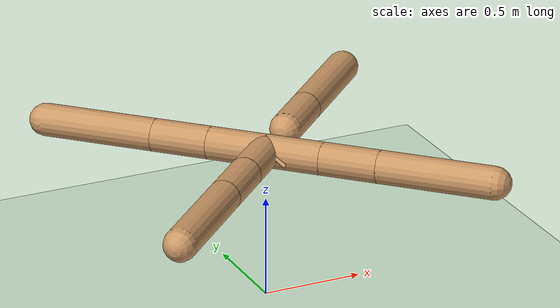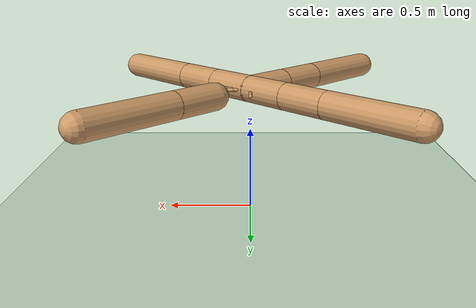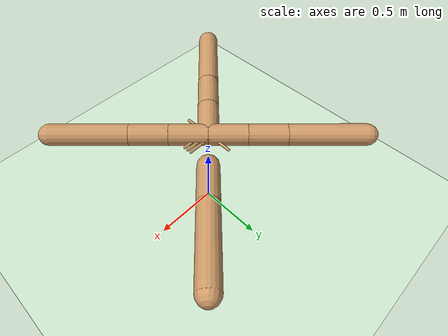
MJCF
<mujoco model="ant">
  <compiler angle="degree" coordinate="local" inertiafromgeom="true"/>
  <option integrator="RK4" timestep="0.01"/>
  <custom>
    <numeric data="0.0 0.0 0.55 1.0 0.0 0.0 0.0 0.0 1.0 0.0 -1.0 0.0 -1.0 0.0 1.0" name="init_qpos"/>
  </custom>
  <default>
    <joint armature="1" damping="1" limited="true"/>
    <geom conaffinity="0" condim="3" density="5.0" friction="1 0.5 0.5" margin="0.01" rgba="0.8 0.6 0.4 1"/>
  </default>
  <asset>
    <texture builtin="gradient" height="100" rgb1="1 1 1" rgb2="0 0 0" type="skybox" width="100"/>
    <texture builtin="flat" height="1278" mark="cross" markrgb="1 1 1" name="texgeom" random="0.01" rgb1="0.8 0.6 0.4" rgb2="0.8 0.6 0.4" type="cube" width="127"/>
    <texture builtin="checker" height="100" name="texplane" rgb1="0 0 0" rgb2="0.8 0.8 0.8" type="2d" width="100"/>
    <material name="MatPlane" reflectance="0.5" shininess="1" specular="1" texrepeat="60 60" texture="texplane"/>
    <material name="geom" texture="texgeom" texuniform="true"/>
  </asset>
  <worldbody>
    <light cutoff="100" diffuse="1 1 1" dir="-0 0 -1.3" directional="true" exponent="1" pos="0 0 1.3" specular=".1 .1 .1"/>
    <geom conaffinity="1" condim="3" material="MatPlane" name="floor" pos="0 0 0" rgba="0.8 0.9 0.8 1" size="40 40 40" type="plane"/>
    <body name="torso" pos="0 0 0.75">
      <camera name="track" mode="trackcom" pos="0 -3 0.3" xyaxes="1 0 0 0 0 1"/>
      <geom name="torso_geom" pos="0 0 0" type="box" size="0.05 0.05 0.01"/>
      <joint armature="0" damping="0" limited="false" margin="0.01" name="root" pos="0 0 0" type="free"/>
      <body name="finger_1" pos="0 0 0">
          <body name="aux_11" pos="0 0.05 0">
            <joint axis="0 0 1" name="joint_11" pos="0 0 0" range="-1 1" type="hinge"/>
            <geom fromto="0 0 0 0 0.05 0" name="g_11" size="0.01" type="capsule"/>
            <body name="aux_12" pos="0 0.05 0">
              <joint axis="1 0 0" name="joint_12" pos="0 0 0" range="-1 1" type="hinge"/>
              <geom fromto="0 0 0 0 0.1 0" name="g_12" size="0.01" type="capsule"/>
            </body>
          </body>
     </body>

    <body name="finger_2" pos="0 0 0">
          <body name="aux_21" pos="0.05 0 0">
            <joint axis="0 0 1" name="joint_21" pos="0 0 0" range="-1 1" type="hinge"/>
            <geom fromto="0 0 0 0.05 0 0" name="g_21" size="0.01" type="capsule"/>
            <body name="aux_22" pos="0.05 0 0">
              <joint axis="0 1 0" name="joint_22" pos="0 0 0" range="-1 1" type="hinge"/>
              <geom fromto="0 0 0 0.1 0 0" name="g_22" size="0.01" type="capsule"/>
            </body>
          </body>
     </body>

    <body name="finger_3" pos="0 0 0">
          <body name="aux_31" pos="0.05 0.03 0">
            <joint axis="0 0 1" name="joint_31" pos="0 0 0" range="-1 1" type="hinge"/>
            <geom fromto="0 0 0 0.05 0 0" name="g_31" size="0.01" type="capsule"/>
            <body name="aux_32" pos="0.05 0 0">
              <joint axis="0 1 0" name="joint_32" pos="0 0 0" range="-1 1" type="hinge"/>
              <geom fromto="0 0 0 0.1 0 0" name="g_32" size="0.01" type="capsule"/>
            </body>
          </body>
     </body>

    <body name="finger_4" pos="0 0 0">
          <body name="aux_41" pos="0.05 -0.03 0">
            <joint axis="0 0 1" name="joint_41" pos="0 0 0" range="-1 1" type="hinge"/>
            <geom fromto="0 0 0 0.05 0 0" name="g_41" size="0.01" type="capsule"/>
            <body name="aux_42" pos="0.05 0 0">
              <joint axis="0 1 0" name="joint_42" pos="0 0 0" range="-1 1" type="hinge"/>
              <geom fromto="0 0 0 0.1 0 0" name="g_42" size="0.01" type="capsule"/>
            </body>
          </body>
     </body>

    <body name="finger_5" pos="0 0 0">
          <body name="aux_51" pos="0 -0.05 0">
            <joint axis="0 0 1" name="joint_51" pos="0 0 0" range="-1 1" type="hinge"/>
            <geom fromto="0 0 0 0 -0.05 0" name="g_51" size="0.01" type="capsule"/>
            <body name="aux_52" pos="0 -0.05 0">
              <joint axis="1 0 0" name="joint_52" pos="0 0 0" range="-1 1" type="hinge"/>
              <geom fromto="0 0 0 0 -0.1 0" name="g_52" size="0.01" type="capsule"/>
            </body>
          </body>
     </body>

      <body name="front_left_leg" pos="0 0 0">
        <geom fromto="0 0 0 0 0.05 0" name="aux_1_geom" size="0.01" type="capsule"/>
        <body name="aux_1" pos="0.2 0.2 0">
          <joint axis="0 0 1" name="hip_1" pos="0.0 0.0 0.0" range="-30 30" type="hinge"/>
          <geom fromto="0.0 0.0 0.0 0.2 0.2 0.0" name="left_leg_geom" size="0.08" type="capsule"/>
          <body pos="0.2 0.2 0">
            <joint axis="-1 1 0" name="ankle_1" pos="0.0 0.0 0.0" range="30 70" type="hinge"/>
            <geom fromto="0.0 0.0 0.0 0.4 0.4 0.0" name="left_ankle_geom" size="0.08" type="capsule"/>
          </body>
        </body>
      </body>
      <body name="front_right_leg" pos="0 0 0">
        <geom fromto="0.0 0.0 0.0 -0.2 0.2 0.0" name="aux_2_geom" size="0.08" type="capsule"/>
        <body name="aux_2" pos="-0.2 0.2 0">
          <joint axis="0 0 1" name="hip_2" pos="0.0 0.0 0.0" range="-30 30" type="hinge"/>
          <geom fromto="0.0 0.0 0.0 -0.2 0.2 0.0" name="right_leg_geom" size="0.08" type="capsule"/>
          <body pos="-0.2 0.2 0">
            <joint axis="1 1 0" name="ankle_2" pos="0.0 0.0 0.0" range="-70 -30" type="hinge"/>
            <geom fromto="0.0 0.0 0.0 -0.4 0.4 0.0" name="right_ankle_geom" size="0.08" type="capsule"/>
          </body>
        </body>
      </body>
      <body name="back_leg" pos="0 0 0">
        <geom fromto="0.0 0.0 0.0 -0.2 -0.2 0.0" name="aux_3_geom" size="0.08" type="capsule"/>
        <body name="aux_3" pos="-0.2 -0.2 0">
          <joint axis="0 0 1" name="hip_3" pos="0.0 0.0 0.0" range="-30 30" type="hinge"/>
          <geom fromto="0.0 0.0 0.0 -0.2 -0.2 0.0" name="back_leg_geom" size="0.08" type="capsule"/>
          <body pos="-0.2 -0.2 0">
            <joint axis="-1 1 0" name="ankle_3" pos="0.0 0.0 0.0" range="-70 -30" type="hinge"/>
            <geom fromto="0.0 0.0 0.0 -0.4 -0.4 0.0" name="third_ankle_geom" size="0.08" type="capsule"/>
          </body>
        </body>
      </body>
      <body name="right_back_leg" pos="0 0 0">
        <geom fromto="0.0 0.0 0.0 0.2 -0.2 0.0" name="aux_4_geom" size="0.08" type="capsule"/>
        <body name="aux_4" pos="0.2 -0.2 0">
          <joint axis="0 0 1" name="hip_4" pos="0.0 0.0 0.0" range="-30 30" type="hinge"/>
          <geom fromto="0.0 0.0 0.0 0.2 -0.2 0.0" name="rightback_leg_geom" size="0.08" type="capsule"/>
          <body pos="0.2 -0.2 0">
            <joint axis="1 1 0" name="ankle_4" pos="0.0 0.0 0.0" range="30 70" type="hinge"/>
            <geom fromto="0.0 0.0 0.0 0.4 -0.4 0.0" name="fourth_ankle_geom" size="0.08" type="capsule"/>
          </body>
        </body>
      </body>
    </body>
  </worldbody>
  <actuator>
    <motor ctrllimited="true" ctrlrange="-1.0 1.0" joint="hip_4" gear="150"/>
    <motor ctrllimited="true" ctrlrange="-1.0 1.0" joint="ankle_4" gear="150"/>
    <motor ctrllimited="true" ctrlrange="-1.0 1.0" joint="hip_1" gear="150"/>
    <motor ctrllimited="true" ctrlrange="-1.0 1.0" joint="ankle_1" gear="150"/>
    <motor ctrllimited="true" ctrlrange="-1.0 1.0" joint="hip_2" gear="150"/>
    <motor ctrllimited="true" ctrlrange="-1.0 1.0" joint="ankle_2" gear="150"/>
    <motor ctrllimited="true" ctrlrange="-1.0 1.0" joint="hip_3" gear="150"/>
    <motor ctrllimited="true" ctrlrange="-1.0 1.0" joint="ankle_3" gear="150"/>
  </actuator>
</mujoco>
